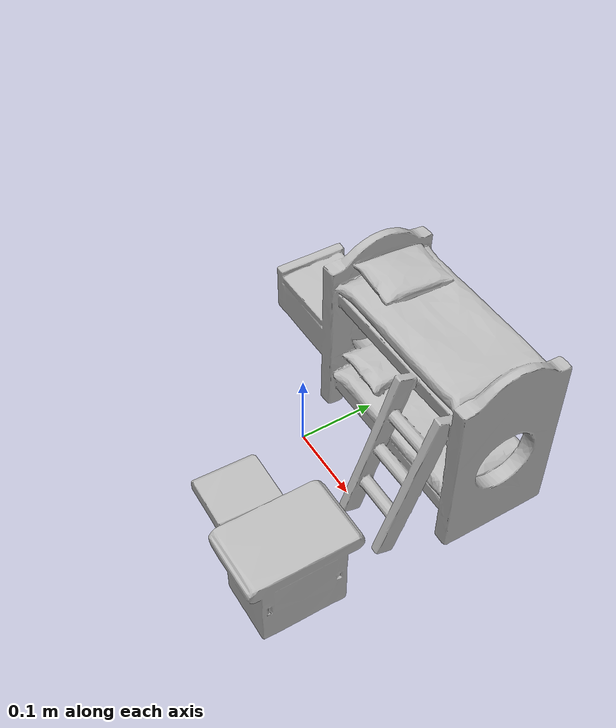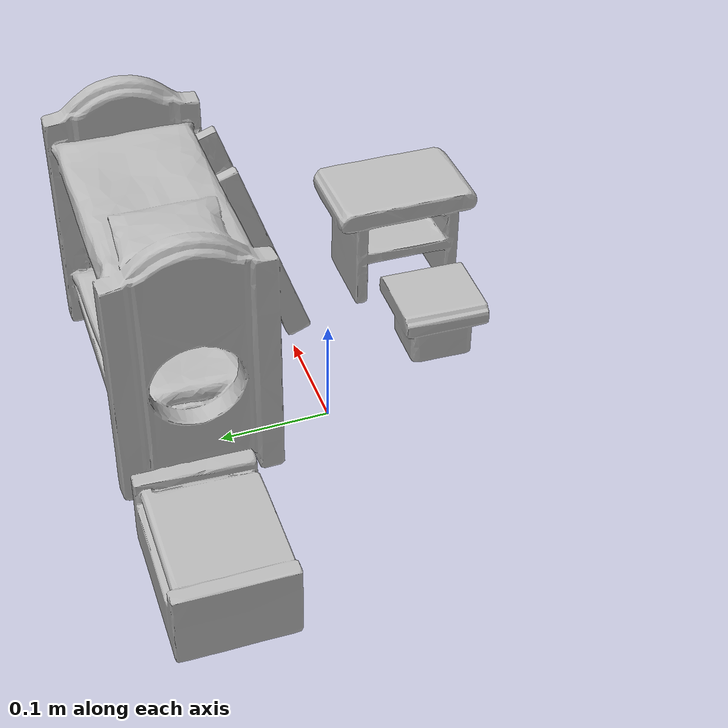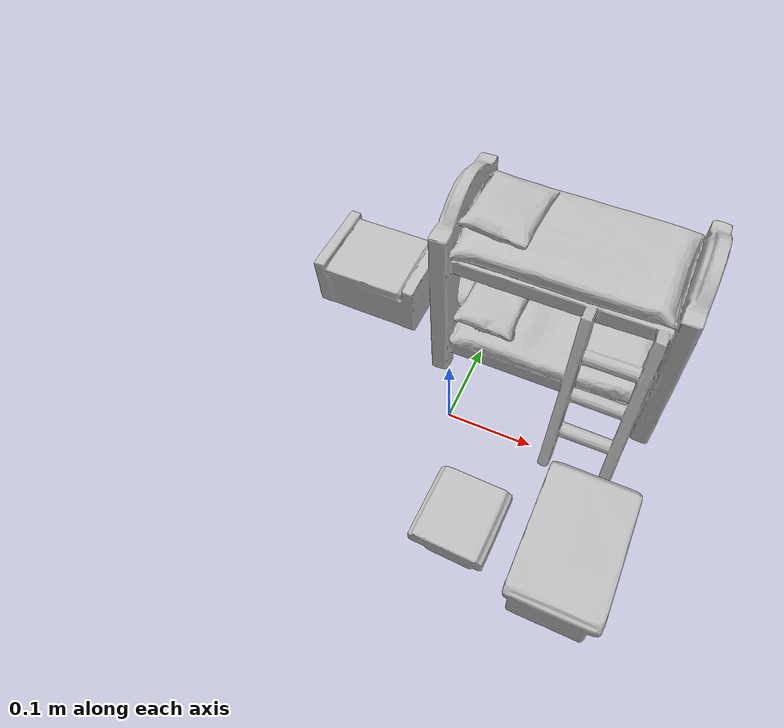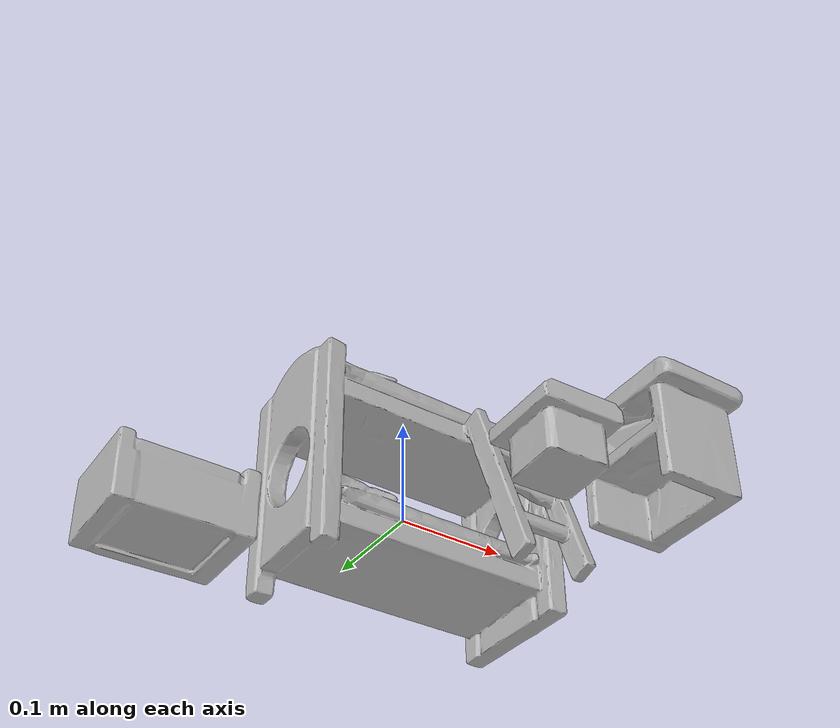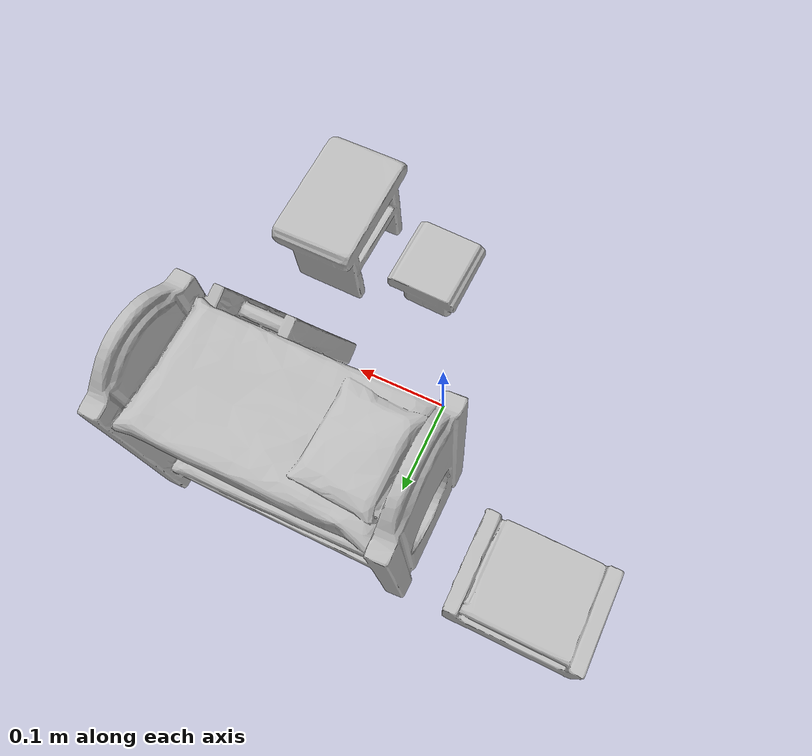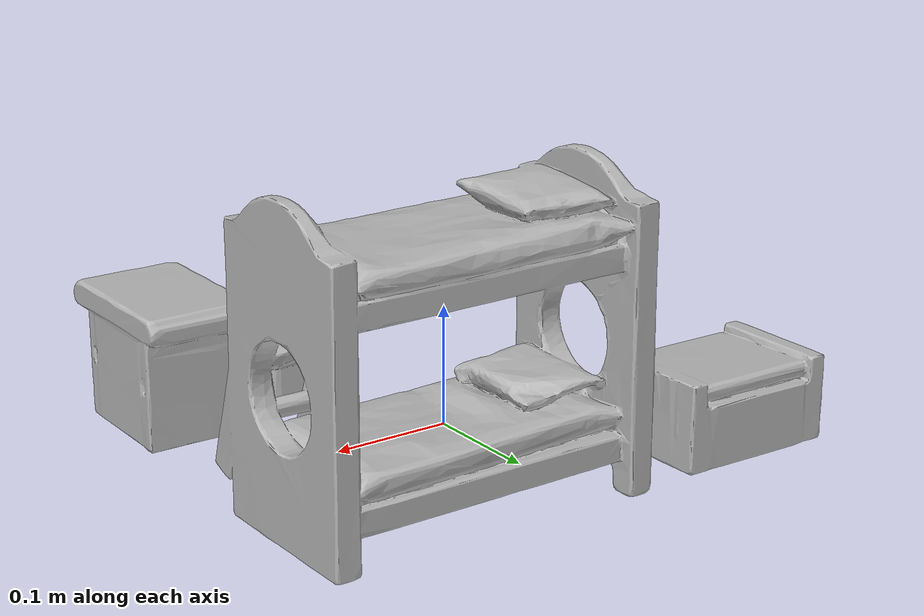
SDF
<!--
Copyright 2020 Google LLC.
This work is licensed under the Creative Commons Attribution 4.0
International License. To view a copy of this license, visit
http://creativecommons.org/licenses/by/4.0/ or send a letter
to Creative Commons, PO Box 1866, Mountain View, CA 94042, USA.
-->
<?xml version="1.0" ?>
<sdf version="1.6">
  <model name="KITCHEN_SET_CLASSIC">
    <link name="link_0">
      <visual name="visual">
        <geometry>
          <mesh>
            <uri>meshes/model.obj</uri>
            <scale>2 2 2</scale>
          </mesh>
        </geometry>
      </visual>
      <collision name="collision_0">
        <geometry>
          <mesh>
            <uri>meshes/model.obj</uri>
            <scale>2 2 2</scale>
          </mesh>
        </geometry>
      </collision>
    </link>
  </model>
</sdf>
